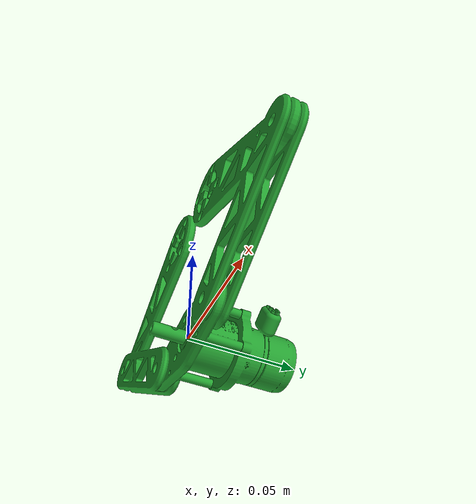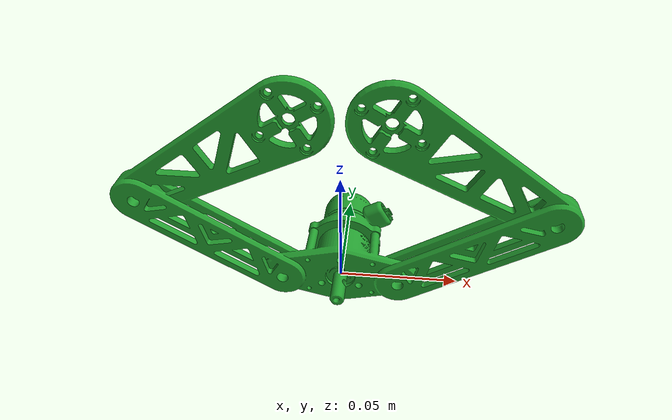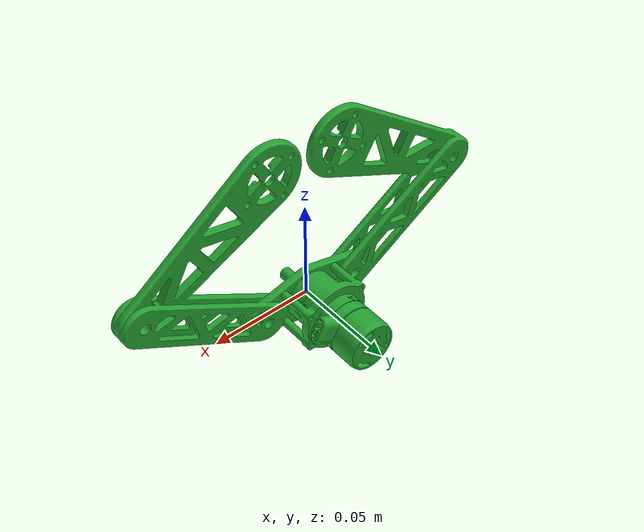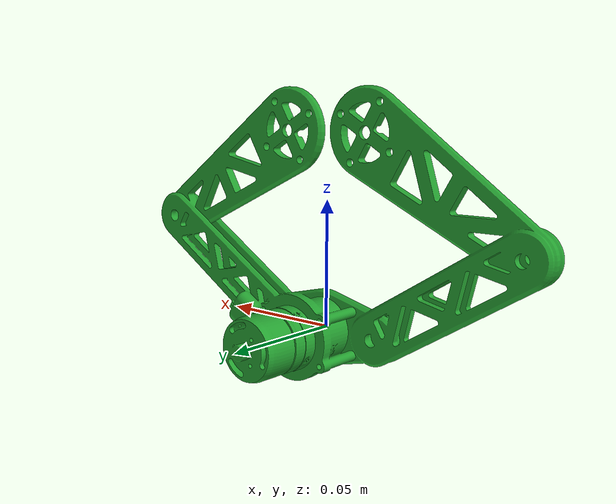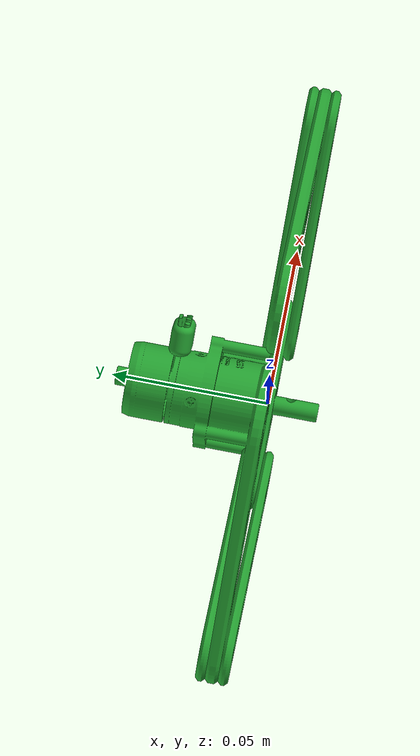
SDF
<?xml version="1.0" ?>

  <sdf version="1.5">
    <model name="usl_balanceTailsitter_leg">
      <link name='leg'>
      <pose>0.0 -0.0 0.0 0 -0 0</pose>
      <inertial>
        <pose>0 0 0 0 -0 0</pose>
        <mass>0.001</mass>
        <inertia>
          <ixx>0.001</ixx>
          <ixy>0</ixy>
          <ixz>0</ixz>
          <iyy>0.001</iyy>
          <iyz>0</iyz>
          <izz>0.001</izz>
        </inertia>
      </inertial>
      <collision name='leg_collision'>
        <pose>0 0 0 0 -0 0</pose>
        <geometry>
          <box>
            <size>0.001 0.001 0.001</size>
          </box>
        </geometry>
        <max_contacts>1</max_contacts>
      </collision>
      <visual name='tilt_visual'>
        <pose>0 0 0 0 -0 0</pose>
        <geometry>
          <mesh>
            <uri>model://usl_balanceTailsitter_leg/meshes/leg.STL</uri>
          </mesh>
        </geometry>
        <material>
          <script>
            <name>Gazebo/Green</name>
            <uri>__default__</uri>
          </script>
        </material>
      </visual>
      <gravity>1</gravity>
      <velocity_decay />
      <self_collide>0</self_collide>
    </link>
  </model>
</sdf>
